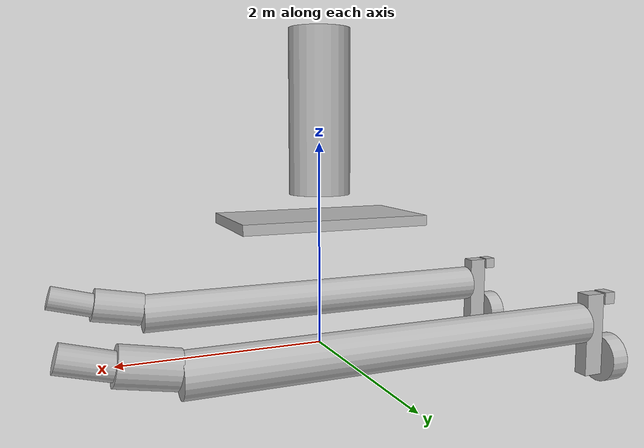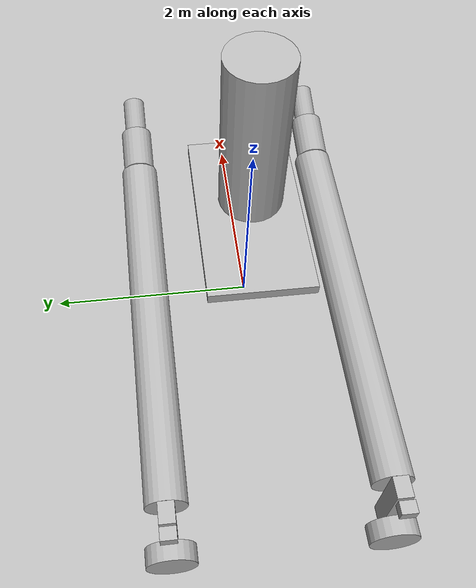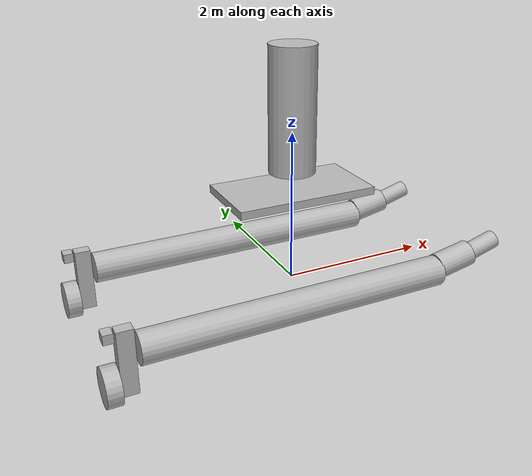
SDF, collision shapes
<?xml version="1.0"?>

<sdf version='1.6'>
<!-- Basic model of the 16' WAM-V USV -->
<model name="wamv">
  <static>false</static>
  <link name="base_link">
    <enable_wind>true</enable_wind>
    <inertial>
      <mass>180.0</mass>
      <inertia>
        <ixx>120.0</ixx>
        <ixy>0.0</ixy>
        <ixz>0.0</ixz>
        <iyy>393</iyy>
        <iyz>0.0</iyz>
        <izz>446.0</izz>
      </inertia>
    </inertial>

    <visual name="base_visual">
      <geometry>
        <mesh><uri>meshes/WAM-V-Base.dae</uri></mesh>
      </geometry>
    </visual>

    <!-- Top base -->
    <collision name="top_base">
      <pose>0 -0 1.25 0 0 0</pose>
      <geometry>
        <box><size>1.85 1 0.1 </size></box>
      </geometry>
    </collision>

    <!-- left base -->
    <collision name="left_float">
      <pose>-0.4 1.03 0.2 0 1.57 0 </pose>
      <geometry>
        <cylinder><length>4</length><radius>0.2</radius></cylinder>
      </geometry>
    </collision>
    <collision name="left_mid_float">
      <pose>1.85 1.03 0.3 0 1.38 0</pose>
      <geometry>
        <cylinder><length>0.5</length><radius>0.17</radius></cylinder>
      </geometry>
    </collision>
    <collision name="left_front_float">
      <pose>2.3 1.03 0.4 0 1.3 0</pose>
      <geometry>
        <cylinder><length>0.45</length><radius>0.12</radius></cylinder>
      </geometry>
    </collision>

    <!-- right base -->
    <collision name="right_float">
      <pose>-0.4 -1.03 0.2 0 1.57 0 </pose>
      <geometry>
        <cylinder><length>4</length><radius>0.2</radius></cylinder>
      </geometry>
    </collision>
    <collision name="right_mid_float">
      <pose>1.85 -1.03 0.3 0 1.38 0</pose>
      <geometry>
        <cylinder><length>0.5</length><radius>0.17</radius></cylinder>
      </geometry>
    </collision>
    <collision name="right_front_float">
      <pose>2.3 -1.03 0.4 0 1.3 0</pose>
      <geometry>
        <cylinder><length>0.45</length><radius>0.12</radius></cylinder>
      </geometry>
    </collision>
  </link>

  <!-- left engine and thruster -->
  <link name="left_engine_link">
    <pose>-2.373776 1.027135 0.318237 0 0 0</pose>
    <visual name ="left_engine_visual">
      <geometry>
        <mesh><uri>meshes/engine.dae</uri></mesh>
      </geometry>
    </visual>
    <collision name="left_engine_vertical_axis_collision">
      <pose>-0.16 0 -0.24 0 0 0</pose>
      <geometry>
        <box><size>0.2 0.15 0.83</size></box>
      </geometry>
    </collision>
    <collision name="left_engine_rear_end_collision">
      <pose>-0.34 0 0.12 0 0 0</pose>
      <geometry>
        <box><size>0.12 0.15 0.12</size></box>
      </geometry>
    </collision>
    <inertial>
      <mass>15.0</mass>
      <inertia>
        <ixx>0.889245</ixx>
        <ixy>0.0</ixy>
        <ixz>0.0</ixz>
        <iyy>0.811125</iyy>
        <iyz>0.0</iyz>
        <izz>0.078125</izz>
      </inertia>
    </inertial>
  </link>
  <link name="left_propeller_link">
    <pose>-2.651932 1.027135 -0.191134 0 0 0</pose>
    <visual name ="left_propeller_visual">
      <geometry>
        <mesh><uri>meshes/propeller.dae</uri></mesh>
      </geometry>
    </visual>
    <collision name="left_propeller_collision">
      <pose>-0.08 0 0 0 1.57 0</pose>
      <geometry>
        <cylinder><length>0.18</length><radius>0.24</radius></cylinder>
      </geometry>
    </collision>
    <inertial>
      <mass>0.5</mass>
      <inertia>
        <ixx>0.008545</ixx>
        <ixy>0.0</ixy>
        <ixz>0.0</ixz>
        <iyy>0.008545</iyy>
        <iyz>0.0</iyz>
        <izz>0.0144</izz>
      </inertia>
    </inertial>
  </link>

  <joint name="left_chasis_engine_joint" type="revolute">
    <axis>
      <xyz>0 0 1</xyz>
      <limit>
        <lower>-1.57079</lower>
        <upper>1.57079</upper>
        <effort>10</effort>
        <velocity>10</velocity>
      </limit>
    </axis>
    <parent>base_link</parent>
    <child>left_engine_link</child>
  </joint>

  <joint name="left_engine_propeller_joint" type="revolute">
    <axis>
      <xyz>1 0 0</xyz>
      <limit>
        <effort>100</effort>
        <velocity>100</velocity>
      </limit>
      <dynamics>
        <friction>0.05</friction>
        <damping>0.05</damping>
      </dynamics>
    </axis>
    <parent>left_engine_link</parent>
    <child>left_propeller_link</child>
  </joint>

  <!-- right engine and thruster -->
  <link name="right_engine_link">
    <pose>-2.373776 -1.027135 0.318237 0 0 0</pose>
    <visual name ="right_engine_visual">
      <geometry>
        <mesh><uri>meshes/engine.dae</uri></mesh>
      </geometry>
    </visual>
    <collision name="right_engine_vertical_axis_collision">
      <pose>-0.16 0 -0.24 0 0 0</pose>
      <geometry>
        <box><size>0.2 0.15 0.83</size></box>
      </geometry>
    </collision>
    <collision name="right_engine_rear_end_collision">
      <pose>-0.34 0 0.12 0 0 0</pose>
      <geometry>
        <box><size>0.12 0.15 0.12</size></box>
      </geometry>
    </collision>
    <inertial>
      <mass>15.0</mass>
      <inertia>
        <ixx>0.889245</ixx>
        <ixy>0.0</ixy>
        <ixz>0.0</ixz>
        <iyy>0.811125</iyy>
        <iyz>0.0</iyz>
        <izz>0.078125</izz>
      </inertia>
    </inertial>
  </link>
  <link name="right_propeller_link">
    <pose>-2.651932 -1.027135 -0.191134 0 0 0</pose>
    <visual name ="right_propeller_visual">
      <geometry>
        <mesh><uri>meshes/propeller.dae</uri></mesh>
      </geometry>
    </visual>
    <collision name="right_propeller_collision">
      <pose>-0.08 0 0 0 1.57 0</pose>
      <geometry>
        <cylinder><length>0.18</length><radius>0.24</radius></cylinder>
      </geometry>
    </collision>
    <inertial>
      <mass>0.5</mass>
      <inertia>
        <ixx>0.008545</ixx>
        <ixy>0.0</ixy>
        <ixz>0.0</ixz>
        <iyy>0.008545</iyy>
        <iyz>0.0</iyz>
        <izz>0.0144</izz>
      </inertia>
    </inertial>
  </link>

  <link name="person_link">
    <inertial>
      <mass>1.0</mass>
      <inertia><ixx>0.01</ixx><iyy>0.01</iyy><izz>0.01</izz></inertia>
    </inertial>

    <visual name="person_visual">
      <pose>0 0 2.5 0 0 3.1416</pose>
      <geometry>
        <mesh><uri>model://walking_person/meshes/walk.dae</uri></mesh>
      </geometry>
    </visual>

    <collision name="person_collision">
      <pose>0 0 2.3 0 0 0</pose>
      <geometry>
        <cylinder><radius>0.3</radius><length>1.6</length></cylinder>
      </geometry>
    </collision>

    <sensor name="person_contact" type="contact">
      <always_on>true</always_on>
      <update_rate>200</update_rate>
      <contact>
        <collision>person_collision</collision>
      </contact>
    </sensor>
  </link>

  <joint name="person_fixed_joint" type="fixed">
    <parent>base_link</parent>
    <child>person_link</child>
  </joint>

  <joint name="right_chasis_engine_joint" type="revolute">
    <axis>
      <xyz>0 0 1</xyz>
      <limit>
        <lower>-1.57079</lower>
        <upper>1.57079</upper>
        <effort>10</effort>
        <velocity>10</velocity>
      </limit>
    </axis>
    <parent>base_link</parent>
    <child>right_engine_link</child>
  </joint>

  <joint name="right_engine_propeller_joint" type="revolute">
    <axis>
      <xyz>1 0 0</xyz>
      <limit>
        <effort>100</effort>
        <velocity>100</velocity>
      </limit>
      <dynamics>
        <friction>0.05</friction>
        <damping>0.05</damping>
      </dynamics>
    </axis>
    <parent>right_engine_link</parent>
    <child>right_propeller_link</child>
  </joint>

  <!-- Uncomment to enable the left thruster -->
  <plugin
    filename="gz-sim-thruster-system"
    name="gz::sim::systems::Thruster">
    <joint_name>left_engine_propeller_joint</joint_name>
    <thrust_coefficient>0.004422</thrust_coefficient>
    <fluid_density>1000</fluid_density>
    <propeller_diameter>0.2</propeller_diameter>
    <velocity_control>true</velocity_control>
  </plugin>

  <plugin
    filename="gz-sim-joint-position-controller-system"
    name="gz::sim::systems::JointPositionController">
    <joint_name>left_chasis_engine_joint</joint_name>
    <use_velocity_commands>true</use_velocity_commands>
    <topic>/wamv/left/thruster/joint/cmd_pos</topic>
  </plugin>

  <!-- Uncomment to enable the right thruster -->
  <plugin
    filename="gz-sim-thruster-system"
    name="gz::sim::systems::Thruster">
    <joint_name>right_engine_propeller_joint</joint_name>
    <thrust_coefficient>0.004422</thrust_coefficient>
    <fluid_density>1000</fluid_density>
    <propeller_diameter>0.2</propeller_diameter>
    <velocity_control>true</velocity_control>
  </plugin>

  <plugin
    filename="gz-sim-joint-position-controller-system"
    name="gz::sim::systems::JointPositionController">
    <joint_name>right_chasis_engine_joint</joint_name>
    <use_velocity_commands>true</use_velocity_commands>
    <topic>/wamv/right/thruster/joint/cmd_pos</topic>
  </plugin>

  <!-- Uncomment to produce buoyancy on the left hull -->
  <plugin
    filename="libSurface.so"
    name="maritime::Surface">
    <link_name>base_link</link_name>
    <hull_length>4.9</hull_length>
    <hull_radius>0.213</hull_radius>
    <fluid_level>0</fluid_level>
    <points>
      <point>0.6 1.03 0</point>
      <point>-1.4 1.03 0</point>
    </points>
    <wavefield>
      <topic>/gazebo/wavefield/parameters</topic>
    </wavefield>
  </plugin>

  <!-- Uncomment to produce buoyancy on the right hull -->
  <plugin
    filename="libSurface.so"
    name="maritime::Surface">
    <link_name>base_link</link_name>
    <hull_length>4.9</hull_length>
    <hull_radius>0.213</hull_radius>
    <fluid_level>0</fluid_level>
    <points>
      <point>0.6 -1.03 0</point>
      <point>-1.4 -1.03 0</point>
    </points>
    <wavefield>
      <topic>/gazebo/wavefield/parameters</topic>
    </wavefield>
  </plugin>

  <!-- Uncomment to enable hydrodynamics -->
  <plugin
    filename="gz-sim-hydrodynamics-system"
    name="gz::sim::systems::Hydrodynamics">
    <link_name>base_link</link_name>
    <xDotU>0.0</xDotU>
    <yDotV>0.0</yDotV>
    <nDotR>0.0</nDotR>
    <xU>-51.3</xU>
    <xAbsU>-72.4</xAbsU>
    <yV>-40.0</yV>
    <yAbsV>0.0</yAbsV>
    <zW>-500.0</zW>
    <kP>-50.0</kP>
    <mQ>-50.0</mQ>
    <nR>-400.0</nR>
    <nAbsR>0.0</nAbsR>
  </plugin>

</model>

</sdf>
